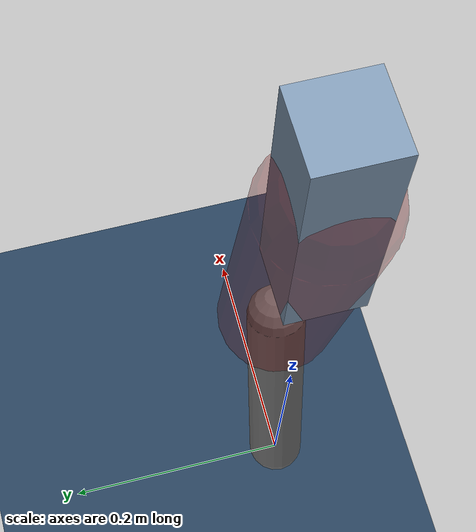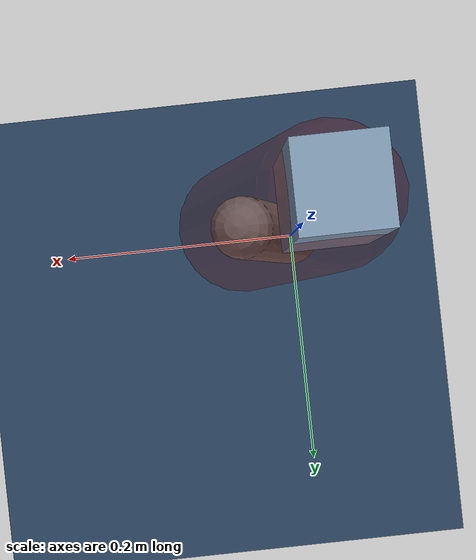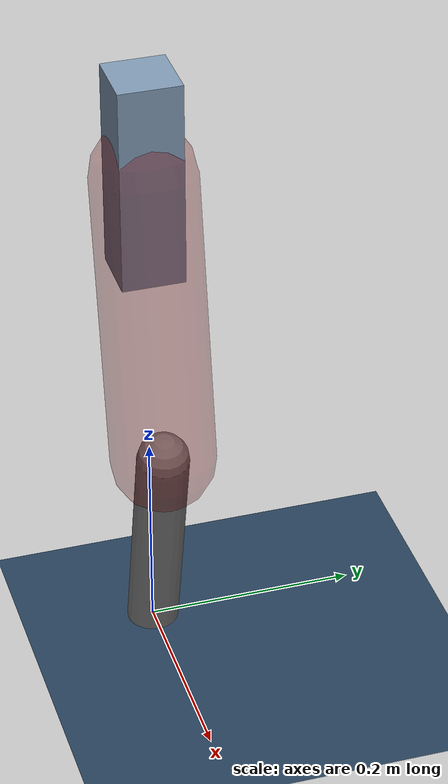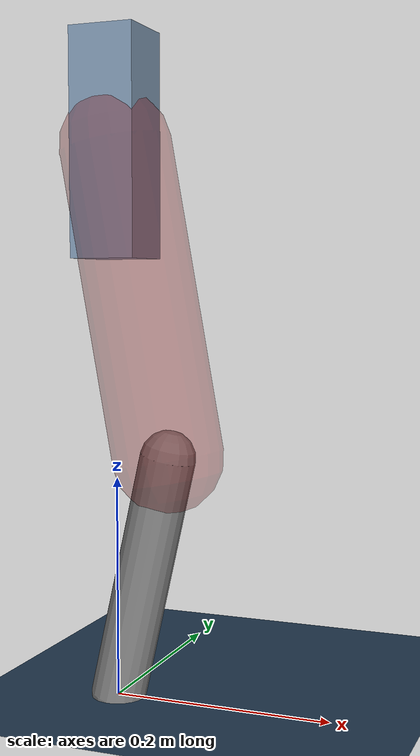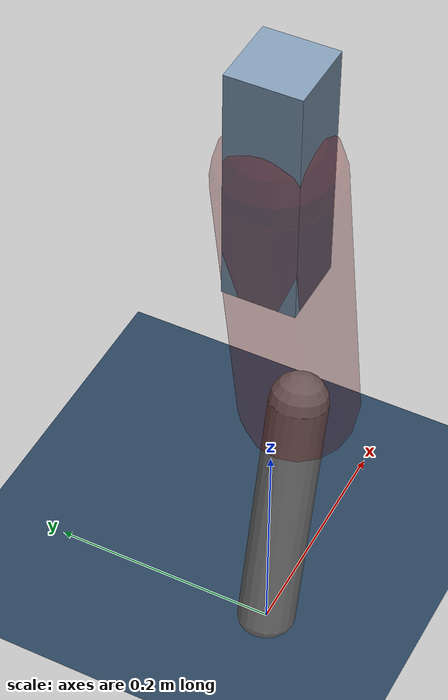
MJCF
<mujoco model="Hopper2D">
	<compiler inertiafromgeom="true" angle="radian" />
	<option timestep="0.001" integrator="implicit" cone="elliptic" solver="Newton" tolerance="1e-10" />

	<default>
		<geom contype="1" conaffinity="1" condim="3" friction="2 0.005 0.0001" solref="0.005 1" />
		<joint limited="true" damping="0.1" />
	</default>

	<asset>
		<texture name="skybox" type="skybox" builtin="gradient" rgb1=".4 .6 .8" rgb2="0 0 0" width="800" height="800" />
		<texture name="grid" type="2d" builtin="checker" rgb1=".1 .2 .3" rgb2=".2 .3 .4" width="300" height="300" mark="edge" markrgb=".2 .3 .4" />
		<material name="ground" texture="grid" texrepeat="1 1" texuniform="true" reflectance="0.1" />
		<material name="leg" rgba="0.5 0.6 0.7 1" />
	</asset>

	<worldbody>

		<geom name="floor" type="plane" size="5 5 0.25" material="ground" />

		<light directional="false" diffuse="0.8 0.8 0.8" specular="0.3 0.3 0.3" pos="0 0 2" dir="0 0 -1" />
		<light mode="targetbodycom" target="base" directional="false" diffuse="0.8 0.8 0.8" specular="0.3 0.3 0.3" pos="0 0 2" dir="0 0 -1" />

		<camera name="fixed" pos="0 -2 1" xyaxes="1 0 0 0 0 1" />
		<camera name="tracking" mode="trackcom" pos="0 -3 1" />

		<body name="root" pos="0 0 0.49725588998123427">
			<joint name="slide_x" type="slide" axis="1 0 0" range="-100 100" />
			<joint name="slide_z" type="slide" axis="0 0 1" range="0 10" />

			<body name="base" pos="0 0 0">
				<geom name="torso" type="box" size="0.03 0.03 0.1" mass="4.899" material="leg" />

				<body name="link1" pos="0 0 0" euler="0 1.3923790593162262 0">
					<joint type="hinge" axis="0 -1 0" pos="0 0 0" name="hinge1" limited="true" range="-3.14 3.14" stiffness="0" damping="0.1" />
					<geom name="thigh" type="capsule" fromto="0 0 0 0.2806913182897271 0 0" size="0.05" rgba="0.5 0 0 0.3" mass="0.936966559382263" />

					<body name="link2" pos="0.2806913182897271 0 0" euler="0 0.4000991543267577 0">
						<joint type="hinge" axis="0 -1 0" pos="0 0 0" name="hinge2" limited="true" range="-3.14 3.14" stiffness="0" damping="0.1" />
						<geom name="shank" type="capsule" fromto="0 0 0 0.22656457169150723 0 0" size="0.025" mass="0.42315165735320576" />

					</body>
				</body>
			</body>
		</body>
	</worldbody>

	<actuator>
		<motor name="torque1" joint="hinge1" ctrlrange="-252.90482254330365 252.90482254330365" ctrllimited="true" gear="1" />
		<motor name="torque2" joint="hinge2" ctrlrange="-148.99220070365706 148.99220070365706" ctrllimited="true" gear="1" />
	</actuator>
</mujoco>
